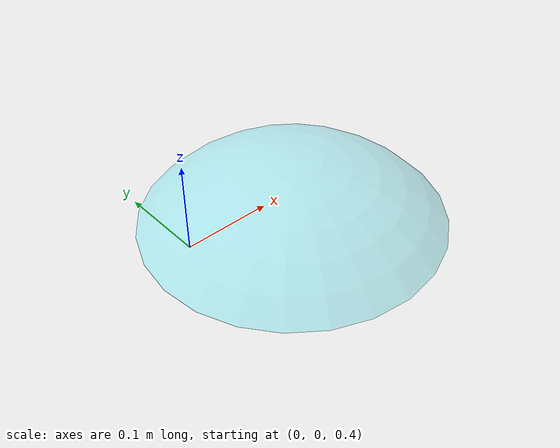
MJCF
<mujoco model="original-23">
  <default>
    <default class="visual">
      <geom group="2" type="mesh" contype="0" conaffinity="0"/>
    </default>
    <default class="collision">
      <geom group="3" type="mesh"/>
    </default>
  </default>
  <asset>
    <material name="material_0_0" specular="0.06666666666666667" shininess="0.03" rgba="0.403921568627451 0.9450980392156862 1 0.4"/>
    <mesh file="original-23.obj"/>
  </asset>
  <worldbody>
    <body name="original-23">
      <geom material="material_0_0" mesh="original-23" class="visual"/>
      <geom mesh="original-23" class="collision"/>
    </body>
  </worldbody>
</mujoco>
